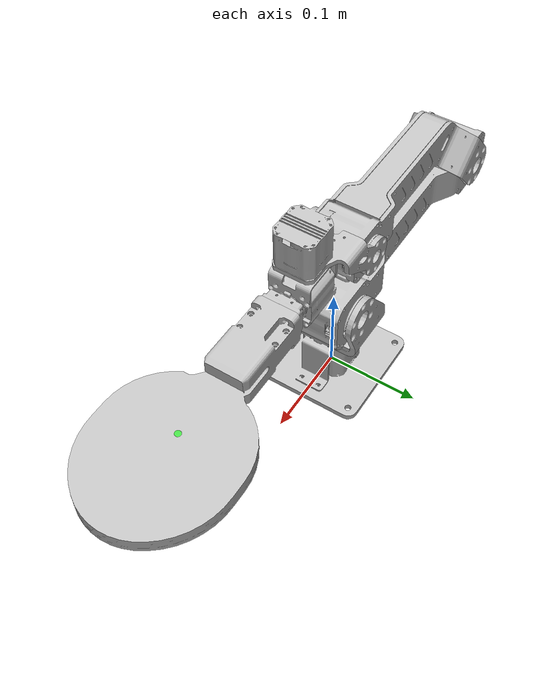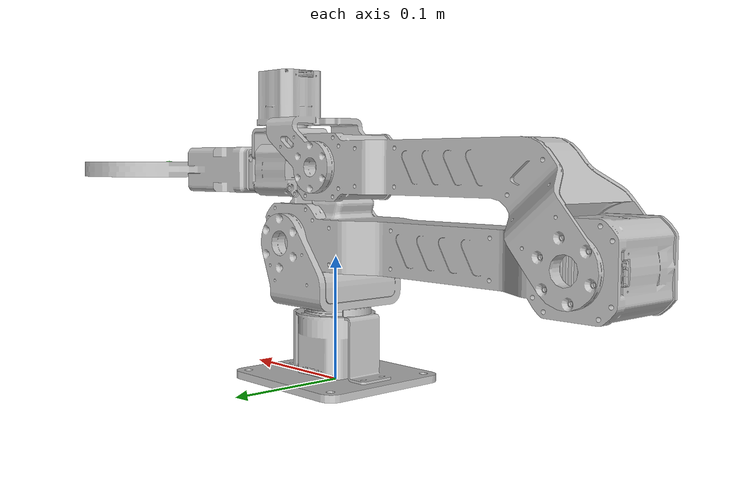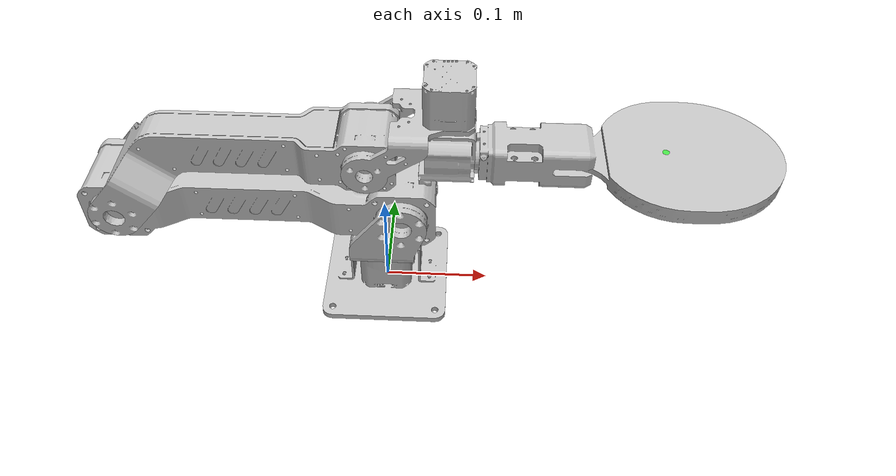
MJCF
<mujoco model="panthera_ht">
  <compiler angle="radian" meshdir="meshes"/>

  <asset>
    <mesh name="base_link" content_type="model/stl" file="base_link.STL"/>
    <mesh name="link1" content_type="model/stl" file="link1.STL"/>
    <mesh name="link2" content_type="model/stl" file="link2.STL"/>
    <mesh name="link3" content_type="model/stl" file="link3.STL"/>
    <mesh name="link4" content_type="model/stl" file="link4.STL"/>
    <mesh name="link5" content_type="model/stl" file="link5.STL"/>
    <mesh name="link6_ttb" content_type="model/stl" file="link6_ttb.STL"/>
  </asset>

  <worldbody>
    <geom type="mesh" contype="0" conaffinity="0" group="1" rgba="0.752941 0.752941 0.752941 1" density="0" mesh="base_link"/>
    <geom type="mesh" rgba="0.752941 0.752941 0.752941 1" mesh="base_link"/>
    <body name="link1" pos="0 0 0.0584">
      <inertial pos="0.00278873 -0.00094387 0.0249184" quat="0.692661 0.650108 0.225614 -0.216051" mass="0.281016" diaginertia="0.000421358 0.000343661 0.000213101"/>
      <joint name="joint1" range="-2.4 2.4" actuatorfrcrange="-21 21" armature="0.012960" damping="0.0600" frictionloss="0.2000"/>
      <geom type="mesh" contype="0" conaffinity="0" group="1" rgba="0.752941 0.752941 0.752941 1" density="0" mesh="link1"/>
      <geom type="mesh" rgba="0.752941 0.752941 0.752941 1" mesh="link1"/>
      <body name="link2" pos="0.018199 0 0.053">
        <inertial pos="-0.129362 -0.00213339 7.183e-05" quat="0.00988446 0.706238 0.00888299 0.70785" mass="1.51651" diaginertia="0.0227212 0.0226105 0.00044695"/>
        <joint name="joint2" range="-0.1 3.2" actuatorfrcrange="-36 36" axis="0 1 0" armature="0.012960" damping="0.0600" frictionloss="0.1500"/>
        <geom type="mesh" contype="0" conaffinity="0" group="1" rgba="0.752941 0.752941 0.752941 1" density="0" mesh="link2"/>
        <geom type="mesh" rgba="0.752941 0.752941 0.752941 1" mesh="link2"/>
        <body name="link3" pos="-0.26 0 0">
          <inertial pos="0.163431 -0.00164646 0.0533743" quat="-0.0903299 0.649643 -0.0759146 0.751027" mass="0.669178" diaginertia="0.00543522 0.00538336 0.00051072"/>
          <joint name="joint3" range="-0.1 4" actuatorfrcrange="-36 36" axis="0 -1 0" armature="0.012960" damping="0.0600" frictionloss="0.1500"/>
          <geom type="mesh" contype="0" conaffinity="0" group="1" rgba="0.752941 0.752941 0.752941 1" density="0" mesh="link3"/>
          <geom type="mesh" rgba="0.752941 0.752941 0.752941 1" mesh="link3"/>
          <body name="link4" pos="0.23 0 0.06">
            <inertial pos="0.0524013 -0.00055249 0.0409418" quat="-0.0119308 0.442275 0.0207973 0.896559" mass="0.307805" diaginertia="0.000483913 0.000395159 0.000124278"/>
            <joint name="joint4" range="-1.6 1.6" actuatorfrcrange="-21 21" axis="0 -1 0" armature="0.012960" damping="0.0300" frictionloss="0.1500"/>
            <geom type="mesh" contype="0" conaffinity="0" group="1" rgba="0.752941 0.752941 0.752941 1" density="0" mesh="link4"/>
            <geom type="mesh" rgba="0.752941 0.752941 0.752941 1" mesh="link4"/>
            <body name="link5" pos="0.07 0 0.036319">
              <inertial pos="0.00319091 8.677e-05 -0.0364178" quat="0.707308 -0.00204013 0.0109461 0.706818" mass="0.283969" diaginertia="0.000134559 0.000126913 0.000107868"/>
              <joint name="joint5" range="-1.7 1.7" actuatorfrcrange="-10 10" axis="0 0 -1" armature="0.009000" damping="0.0200" frictionloss="0.0400"/>
              <geom type="mesh" contype="0" conaffinity="0" group="1" rgba="0.752941 0.752941 0.752941 1" density="0" mesh="link5"/>
              <geom type="mesh" rgba="0.752941 0.752941 0.752941 1" mesh="link5"/>
              <body name="link6" pos="0.02345 0 -0.039">
                <inertial pos="0.107318 0 9.64e-06" quat="0 0.707172 0 0.707042" mass="0.340735" diaginertia="0.00247492 0.00227113 0.00025204"/>
                <joint name="joint6" range="-2.5 2.5" actuatorfrcrange="-10 10" axis="1 0 0" armature="0.009000" damping="0.0200" frictionloss="0.0400"/>
                <geom type="mesh" contype="0" conaffinity="0" group="1" rgba="0.752941 0.752941 0.752941 1" density="0" mesh="link6_ttb"/>
                <geom type="mesh" rgba="0.752941 0.752941 0.752941 1" mesh="link6_ttb"/>
                <site name="tcp" pos="0.165 0.0 0.0" size="0.008" rgba="0 1 0 0.6"/>
              </body>
            </body>
          </body>
        </body>
      </body>
    </body>
  </worldbody>

  <actuator>
    <motor name="joint1_mot" joint="joint1" ctrlrange="-10.0 10.0" ctrllimited="true" forcerange="-10.0 10.0"/>
    <motor name="joint2_mot" joint="joint2" ctrlrange="-20.0 20.0" ctrllimited="true" forcerange="-20.0 20.0"/>
    <motor name="joint3_mot" joint="joint3" ctrlrange="-20.0 20.0" ctrllimited="true" forcerange="-20.0 20.0"/>
    <motor name="joint4_mot" joint="joint4" ctrlrange="-10.0 10.0" ctrllimited="true" forcerange="-10.0 10.0"/>
    <motor name="joint5_mot" joint="joint5" ctrlrange="-5.0 5.0" ctrllimited="true" forcerange="-5.0 5.0"/>
    <motor name="joint6_mot" joint="joint6" ctrlrange="-5.0 5.0" ctrllimited="true" forcerange="-5.0 5.0"/>
  </actuator>

  <sensor>
    <jointpos name="joint1_pos" joint="joint1"/>
    <jointvel name="joint1_vel" joint="joint1"/>
    <jointactuatorfrc name="joint1_frc" joint="joint1"/>
    <jointpos name="joint2_pos" joint="joint2"/>
    <jointvel name="joint2_vel" joint="joint2"/>
    <jointactuatorfrc name="joint2_frc" joint="joint2"/>
    <jointpos name="joint3_pos" joint="joint3"/>
    <jointvel name="joint3_vel" joint="joint3"/>
    <jointactuatorfrc name="joint3_frc" joint="joint3"/>
    <jointpos name="joint4_pos" joint="joint4"/>
    <jointvel name="joint4_vel" joint="joint4"/>
    <jointactuatorfrc name="joint4_frc" joint="joint4"/>
    <jointpos name="joint5_pos" joint="joint5"/>
    <jointvel name="joint5_vel" joint="joint5"/>
    <jointactuatorfrc name="joint5_frc" joint="joint5"/>
    <jointpos name="joint6_pos" joint="joint6"/>
    <jointvel name="joint6_vel" joint="joint6"/>
    <jointactuatorfrc name="joint6_frc" joint="joint6"/>
  </sensor>

  <contact>
    <exclude body1="world" body2="link1"/>
  </contact>
</mujoco>
